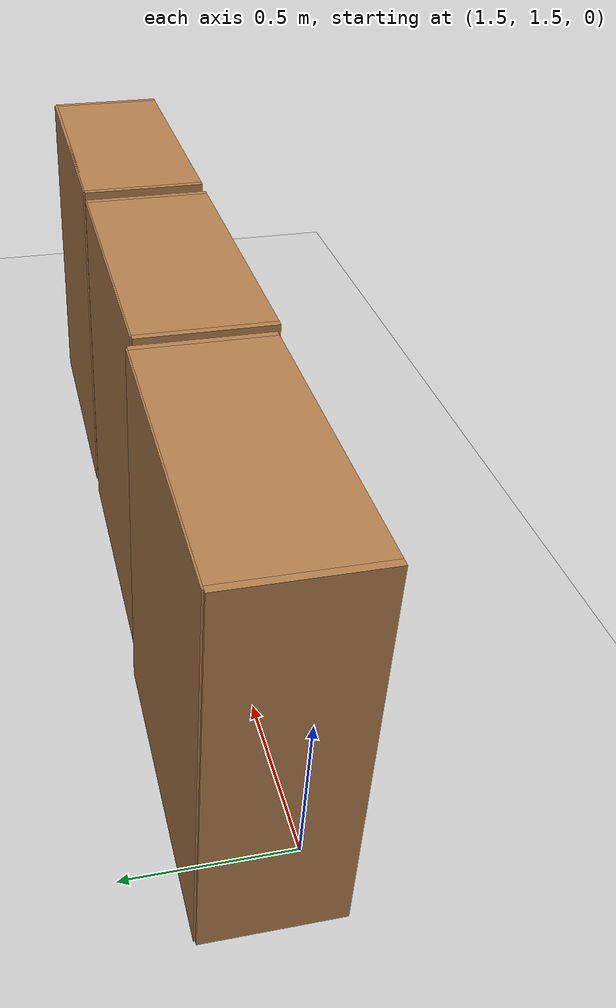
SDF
<sdf version="1.10">
 <world name="empty">
  <physics name="1ms" type="ignored">
   <max_step_size>0.001</max_step_size>
   <real_time_factor>1</real_time_factor>
   <real_time_update_rate>1000</real_time_update_rate>
  </physics>
  <plugin name="gz::sim::systems::Physics" filename="gz-sim-physics-system"/>
  <plugin name="gz::sim::systems::UserCommands" filename="gz-sim-user-commands-system"/>
  <plugin name="gz::sim::systems::SceneBroadcaster" filename="gz-sim-scene-broadcaster-system"/>
  <plugin name="gz::sim::systems::Contact" filename="gz-sim-contact-system"/>
  <gravity>0 0 -9.8000000000000007</gravity>
  <magnetic_field>5.5644999999999998e-06 2.2875799999999999e-05 -4.2388400000000002e-05</magnetic_field>
  <atmosphere type="adiabatic"/>
  <scene>
   <ambient>0.400000006 0.400000006 0.400000006 1</ambient>
   <background>0.699999988 0.699999988 0.699999988 1</background>
   <shadows>true</shadows>
  </scene>
  <model name="ground_plane">
   <static>true</static>
   <link name="link">
    <collision name="collision">
     <geometry><plane><normal>0 0 1</normal><size>100 100</size></plane></geometry>
    </collision>
    <visual name="visual">
     <geometry><plane><normal>0 0 1</normal><size>100 100</size></plane></geometry>
     <material>
      <ambient>0.800000012 0.800000012 0.800000012 1</ambient>
      <diffuse>0.800000012 0.800000012 0.800000012 1</diffuse>
      <specular>0.800000012 0.800000012 0.800000012 1</specular>
     </material>
    </visual>
    <inertial>
     <mass>1</mass>
     <inertia><ixx>1</ixx><ixy>0</ixy><ixz>0</ixz><iyy>1</iyy><iyz>0</iyz><izz>1</izz></inertia>
    </inertial>
   </link>
  </model>
  <model name="Bookshelf">
   <static>true</static>
   <link name="link">
    <inertial>
     <mass>1</mass>
     <inertia><ixx>1</ixx><ixy>0</ixy><ixz>0</ixz><iyy>1</iyy><iyz>0</iyz><izz>1</izz></inertia>
    </inertial>
    <collision name="back">
     <pose>0 0.0050000000000000001 0.59999999999999998 0 0 0</pose>
     <geometry><box><size>0.90000000000000002 0.01 1.2</size></box></geometry>
    </collision>
    <visual name="visual1">
     <pose>0 0.0050000000000000001 0.59999999999999998 0 0 0</pose>
     <geometry><box><size>0.90000000000000002 0.01 1.2</size></box></geometry>
     <material>
      <diffuse>1 1 1 1</diffuse>
      <script><uri>file://media/materials/scripts/gazebo.material</uri><name>Gazebo/Wood</name></script>
      <pbr>
       <metal>
        <albedo_map>https://fuel.gazebosim.org/1.0/openrobotics/models/bookshelf/4/files/bookshelf_diffuse.jpg</albedo_map>
       </metal>
      </pbr>
     </material>
    </visual>
    <collision name="left_side">
     <pose>0.45000000000000001 -0.19500000000000001 0.59999999999999998 0 0 0</pose>
     <geometry><box><size>0.02 0.40000000000000002 1.2</size></box></geometry>
    </collision>
    <visual name="visual2">
     <pose>0.45000000000000001 -0.19500000000000001 0.59999999999999998 0 0 0</pose>
     <geometry><box><size>0.02 0.40000000000000002 1.2</size></box></geometry>
     <material>
      <diffuse>1 1 1 1</diffuse>
      <script><uri>file://media/materials/scripts/gazebo.material</uri><name>Gazebo/Wood</name></script>
      <pbr>
       <metal>
        <albedo_map>https://fuel.gazebosim.org/1.0/openrobotics/models/bookshelf/4/files/bookshelf_diffuse.jpg</albedo_map>
       </metal>
      </pbr>
     </material>
    </visual>
    <collision name="right_side">
     <pose>-0.45000000000000001 -0.19500000000000001 0.59999999999999998 0 0 0</pose>
     <geometry><box><size>0.02 0.40000000000000002 1.2</size></box></geometry>
    </collision>
    <visual name="visual3">
     <pose>-0.45000000000000001 -0.19500000000000001 0.59999999999999998 0 0 0</pose>
     <geometry><box><size>0.02 0.40000000000000002 1.2</size></box></geometry>
     <material>
      <diffuse>1 1 1 1</diffuse>
      <script><uri>file://media/materials/scripts/gazebo.material</uri><name>Gazebo/Wood</name></script>
      <pbr>
       <metal>
        <albedo_map>https://fuel.gazebosim.org/1.0/openrobotics/models/bookshelf/4/files/bookshelf_diffuse.jpg</albedo_map>
       </metal>
      </pbr>
     </material>
    </visual>
    <collision name="bottom">
     <pose>0 -0.19500000000000001 0.029999999999999999 0 0 0</pose>
     <geometry><box><size>0.88 0.40000000000000002 0.059999999999999998</size></box></geometry>
    </collision>
    <visual name="visual4">
     <pose>0 -0.19500000000000001 0.029999999999999999 0 0 0</pose>
     <geometry><box><size>0.88 0.40000000000000002 0.059999999999999998</size></box></geometry>
     <material>
      <diffuse>1 1 1 1</diffuse>
      <script><uri>file://media/materials/scripts/gazebo.material</uri><name>Gazebo/Wood</name></script>
      <pbr>
       <metal>
        <albedo_map>https://fuel.gazebosim.org/1.0/openrobotics/models/bookshelf/4/files/bookshelf_diffuse.jpg</albedo_map>
       </metal>
      </pbr>
     </material>
    </visual>
    <collision name="top">
     <pose>0 -0.19500000000000001 1.1899999999999999 0 0 0</pose>
     <geometry><box><size>0.88 0.40000000000000002 0.02</size></box></geometry>
    </collision>
    <visual name="visual5">
     <pose>0 -0.19500000000000001 1.1899999999999999 0 0 0</pose>
     <geometry><box><size>0.88 0.40000000000000002 0.02</size></box></geometry>
     <material>
      <diffuse>1 1 1 1</diffuse>
      <script><uri>file://media/materials/scripts/gazebo.material</uri><name>Gazebo/Wood</name></script>
      <pbr>
       <metal>
        <albedo_map>https://fuel.gazebosim.org/1.0/openrobotics/models/bookshelf/4/files/bookshelf_diffuse.jpg</albedo_map>
       </metal>
      </pbr>
     </material>
    </visual>
    <collision name="low_shelf">
     <pose>0 -0.19500000000000001 0.42999999999999999 0 0 0</pose>
     <geometry><box><size>0.88 0.40000000000000002 0.02</size></box></geometry>
    </collision>
    <visual name="visual6">
     <pose>0 -0.19500000000000001 0.42999999999999999 0 0 0</pose>
     <geometry><box><size>0.88 0.40000000000000002 0.02</size></box></geometry>
     <material>
      <diffuse>1 1 1 1</diffuse>
      <script><uri>file://media/materials/scripts/gazebo.material</uri><name>Gazebo/Wood</name></script>
      <pbr>
       <metal>
        <albedo_map>https://fuel.gazebosim.org/1.0/openrobotics/models/bookshelf/4/files/bookshelf_diffuse.jpg</albedo_map>
       </metal>
      </pbr>
     </material>
    </visual>
    <collision name="high_shelf">
     <pose>0 -0.19500000000000001 0.80000000000000004 0 0 0</pose>
     <geometry><box><size>0.88 0.40000000000000002 0.02</size></box></geometry>
    </collision>
    <visual name="visual7">
     <pose>0 -0.19500000000000001 0.80000000000000004 0 0 0</pose>
     <geometry><box><size>0.88 0.40000000000000002 0.02</size></box></geometry>
     <material>
      <diffuse>1 1 1 1</diffuse>
      <script><uri>file://media/materials/scripts/gazebo.material</uri><name>Gazebo/Wood</name></script>
      <pbr>
       <metal>
        <albedo_map>https://fuel.gazebosim.org/1.0/openrobotics/models/bookshelf/4/files/bookshelf_diffuse.jpg</albedo_map>
       </metal>
      </pbr>
     </material>
    </visual>
   </link>
   <pose>2.7059342861175537 1.8068100214004517 0 0 0 0</pose>
  </model>
  <model name="Bookshelf_0">
   <static>true</static>
   <link name="link">
    <inertial>
     <mass>1</mass>
     <inertia><ixx>1</ixx><ixy>0</ixy><ixz>0</ixz><iyy>1</iyy><iyz>0</iyz><izz>1</izz></inertia>
    </inertial>
    <collision name="back">
     <pose>0 0.0050000000000000001 0.59999999999999998 0 0 0</pose>
     <geometry><box><size>0.90000000000000002 0.01 1.2</size></box></geometry>
    </collision>
    <visual name="visual1">
     <pose>0 0.0050000000000000001 0.59999999999999998 0 0 0</pose>
     <geometry><box><size>0.90000000000000002 0.01 1.2</size></box></geometry>
     <material>
      <diffuse>1 1 1 1</diffuse>
      <script><uri>file://media/materials/scripts/gazebo.material</uri><name>Gazebo/Wood</name></script>
      <pbr>
       <metal>
        <albedo_map>https://fuel.gazebosim.org/1.0/openrobotics/models/bookshelf/4/files/bookshelf_diffuse.jpg</albedo_map>
       </metal>
      </pbr>
     </material>
    </visual>
    <collision name="left_side">
     <pose>0.45000000000000001 -0.19500000000000001 0.59999999999999998 0 0 0</pose>
     <geometry><box><size>0.02 0.40000000000000002 1.2</size></box></geometry>
    </collision>
    <visual name="visual2">
     <pose>0.45000000000000001 -0.19500000000000001 0.59999999999999998 0 0 0</pose>
     <geometry><box><size>0.02 0.40000000000000002 1.2</size></box></geometry>
     <material>
      <diffuse>1 1 1 1</diffuse>
      <script><uri>file://media/materials/scripts/gazebo.material</uri><name>Gazebo/Wood</name></script>
      <pbr>
       <metal>
        <albedo_map>https://fuel.gazebosim.org/1.0/openrobotics/models/bookshelf/4/files/bookshelf_diffuse.jpg</albedo_map>
       </metal>
      </pbr>
     </material>
    </visual>
    <collision name="right_side">
     <pose>-0.45000000000000001 -0.19500000000000001 0.59999999999999998 0 0 0</pose>
     <geometry><box><size>0.02 0.40000000000000002 1.2</size></box></geometry>
    </collision>
    <visual name="visual3">
     <pose>-0.45000000000000001 -0.19500000000000001 0.59999999999999998 0 0 0</pose>
     <geometry><box><size>0.02 0.40000000000000002 1.2</size></box></geometry>
     <material>
      <diffuse>1 1 1 1</diffuse>
      <script><uri>file://media/materials/scripts/gazebo.material</uri><name>Gazebo/Wood</name></script>
      <pbr>
       <metal>
        <albedo_map>https://fuel.gazebosim.org/1.0/openrobotics/models/bookshelf/4/files/bookshelf_diffuse.jpg</albedo_map>
       </metal>
      </pbr>
     </material>
    </visual>
    <collision name="bottom">
     <pose>0 -0.19500000000000001 0.029999999999999999 0 0 0</pose>
     <geometry><box><size>0.88 0.40000000000000002 0.059999999999999998</size></box></geometry>
    </collision>
    <visual name="visual4">
     <pose>0 -0.19500000000000001 0.029999999999999999 0 0 0</pose>
     <geometry><box><size>0.88 0.40000000000000002 0.059999999999999998</size></box></geometry>
     <material>
      <diffuse>1 1 1 1</diffuse>
      <script><uri>file://media/materials/scripts/gazebo.material</uri><name>Gazebo/Wood</name></script>
      <pbr>
       <metal>
        <albedo_map>https://fuel.gazebosim.org/1.0/openrobotics/models/bookshelf/4/files/bookshelf_diffuse.jpg</albedo_map>
       </metal>
      </pbr>
     </material>
    </visual>
    <collision name="top">
     <pose>0 -0.19500000000000001 1.1899999999999999 0 0 0</pose>
     <geometry><box><size>0.88 0.40000000000000002 0.02</size></box></geometry>
    </collision>
    <visual name="visual5">
     <pose>0 -0.19500000000000001 1.1899999999999999 0 0 0</pose>
     <geometry><box><size>0.88 0.40000000000000002 0.02</size></box></geometry>
     <material>
      <diffuse>1 1 1 1</diffuse>
      <script><uri>file://media/materials/scripts/gazebo.material</uri><name>Gazebo/Wood</name></script>
      <pbr>
       <metal>
        <albedo_map>https://fuel.gazebosim.org/1.0/openrobotics/models/bookshelf/4/files/bookshelf_diffuse.jpg</albedo_map>
       </metal>
      </pbr>
     </material>
    </visual>
    <collision name="low_shelf">
     <pose>0 -0.19500000000000001 0.42999999999999999 0 0 0</pose>
     <geometry><box><size>0.88 0.40000000000000002 0.02</size></box></geometry>
    </collision>
    <visual name="visual6">
     <pose>0 -0.19500000000000001 0.42999999999999999 0 0 0</pose>
     <geometry><box><size>0.88 0.40000000000000002 0.02</size></box></geometry>
     <material>
      <diffuse>1 1 1 1</diffuse>
      <script><uri>file://media/materials/scripts/gazebo.material</uri><name>Gazebo/Wood</name></script>
      <pbr>
       <metal>
        <albedo_map>https://fuel.gazebosim.org/1.0/openrobotics/models/bookshelf/4/files/bookshelf_diffuse.jpg</albedo_map>
       </metal>
      </pbr>
     </material>
    </visual>
    <collision name="high_shelf">
     <pose>0 -0.19500000000000001 0.80000000000000004 0 0 0</pose>
     <geometry><box><size>0.88 0.40000000000000002 0.02</size></box></geometry>
    </collision>
    <visual name="visual7">
     <pose>0 -0.19500000000000001 0.80000000000000004 0 0 0</pose>
     <geometry><box><size>0.88 0.40000000000000002 0.02</size></box></geometry>
     <material>
      <diffuse>1 1 1 1</diffuse>
      <script><uri>file://media/materials/scripts/gazebo.material</uri><name>Gazebo/Wood</name></script>
      <pbr>
       <metal>
        <albedo_map>https://fuel.gazebosim.org/1.0/openrobotics/models/bookshelf/4/files/bookshelf_diffuse.jpg</albedo_map>
       </metal>
      </pbr>
     </material>
    </visual>
   </link>
   <pose>3.6852011680603027 1.8036400079727173 0 0 0 0</pose>
  </model>
  <model name="Bookshelf_1">
   <static>true</static>
   <link name="link">
    <inertial>
     <mass>1</mass>
     <inertia><ixx>1</ixx><ixy>0</ixy><ixz>0</ixz><iyy>1</iyy><iyz>0</iyz><izz>1</izz></inertia>
    </inertial>
    <collision name="back">
     <pose>0 0.0050000000000000001 0.59999999999999998 0 0 0</pose>
     <geometry><box><size>0.90000000000000002 0.01 1.2</size></box></geometry>
    </collision>
    <visual name="visual1">
     <pose>0 0.0050000000000000001 0.59999999999999998 0 0 0</pose>
     <geometry><box><size>0.90000000000000002 0.01 1.2</size></box></geometry>
     <material>
      <diffuse>1 1 1 1</diffuse>
      <script><uri>file://media/materials/scripts/gazebo.material</uri><name>Gazebo/Wood</name></script>
      <pbr>
       <metal>
        <albedo_map>https://fuel.gazebosim.org/1.0/openrobotics/models/bookshelf/4/files/bookshelf_diffuse.jpg</albedo_map>
       </metal>
      </pbr>
     </material>
    </visual>
    <collision name="left_side">
     <pose>0.45000000000000001 -0.19500000000000001 0.59999999999999998 0 0 0</pose>
     <geometry><box><size>0.02 0.40000000000000002 1.2</size></box></geometry>
    </collision>
    <visual name="visual2">
     <pose>0.45000000000000001 -0.19500000000000001 0.59999999999999998 0 0 0</pose>
     <geometry><box><size>0.02 0.40000000000000002 1.2</size></box></geometry>
     <material>
      <diffuse>1 1 1 1</diffuse>
      <script><uri>file://media/materials/scripts/gazebo.material</uri><name>Gazebo/Wood</name></script>
      <pbr>
       <metal>
        <albedo_map>https://fuel.gazebosim.org/1.0/openrobotics/models/bookshelf/4/files/bookshelf_diffuse.jpg</albedo_map>
       </metal>
      </pbr>
     </material>
    </visual>
    <collision name="right_side">
     <pose>-0.45000000000000001 -0.19500000000000001 0.59999999999999998 0 0 0</pose>
     <geometry><box><size>0.02 0.40000000000000002 1.2</size></box></geometry>
    </collision>
    <visual name="visual3">
     <pose>-0.45000000000000001 -0.19500000000000001 0.59999999999999998 0 0 0</pose>
     <geometry><box><size>0.02 0.40000000000000002 1.2</size></box></geometry>
     <material>
      <diffuse>1 1 1 1</diffuse>
      <script><uri>file://media/materials/scripts/gazebo.material</uri><name>Gazebo/Wood</name></script>
      <pbr>
       <metal>
        <albedo_map>https://fuel.gazebosim.org/1.0/openrobotics/models/bookshelf/4/files/bookshelf_diffuse.jpg</albedo_map>
       </metal>
      </pbr>
     </material>
    </visual>
    <collision name="bottom">
     <pose>0 -0.19500000000000001 0.029999999999999999 0 0 0</pose>
     <geometry><box><size>0.88 0.40000000000000002 0.059999999999999998</size></box></geometry>
    </collision>
    <visual name="visual4">
     <pose>0 -0.19500000000000001 0.029999999999999999 0 0 0</pose>
     <geometry><box><size>0.88 0.40000000000000002 0.059999999999999998</size></box></geometry>
     <material>
      <diffuse>1 1 1 1</diffuse>
      <script><uri>file://media/materials/scripts/gazebo.material</uri><name>Gazebo/Wood</name></script>
      <pbr>
       <metal>
        <albedo_map>https://fuel.gazebosim.org/1.0/openrobotics/models/bookshelf/4/files/bookshelf_diffuse.jpg</albedo_map>
       </metal>
      </pbr>
     </material>
    </visual>
    <collision name="top">
     <pose>0 -0.19500000000000001 1.1899999999999999 0 0 0</pose>
     <geometry><box><size>0.88 0.40000000000000002 0.02</size></box></geometry>
    </collision>
    <visual name="visual5">
     <pose>0 -0.19500000000000001 1.1899999999999999 0 0 0</pose>
     <geometry><box><size>0.88 0.40000000000000002 0.02</size></box></geometry>
     <material>
      <diffuse>1 1 1 1</diffuse>
      <script><uri>file://media/materials/scripts/gazebo.material</uri><name>Gazebo/Wood</name></script>
      <pbr>
       <metal>
        <albedo_map>https://fuel.gazebosim.org/1.0/openrobotics/models/bookshelf/4/files/bookshelf_diffuse.jpg</albedo_map>
       </metal>
      </pbr>
     </material>
    </visual>
    <collision name="low_shelf">
     <pose>0 -0.19500000000000001 0.42999999999999999 0 0 0</pose>
     <geometry><box><size>0.88 0.40000000000000002 0.02</size></box></geometry>
    </collision>
    <visual name="visual6">
     <pose>0 -0.19500000000000001 0.42999999999999999 0 0 0</pose>
     <geometry><box><size>0.88 0.40000000000000002 0.02</size></box></geometry>
     <material>
      <diffuse>1 1 1 1</diffuse>
      <script><uri>file://media/materials/scripts/gazebo.material</uri><name>Gazebo/Wood</name></script>
      <pbr>
       <metal>
        <albedo_map>https://fuel.gazebosim.org/1.0/openrobotics/models/bookshelf/4/files/bookshelf_diffuse.jpg</albedo_map>
       </metal>
      </pbr>
     </material>
    </visual>
    <collision name="high_shelf">
     <pose>0 -0.19500000000000001 0.80000000000000004 0 0 0</pose>
     <geometry><box><size>0.88 0.40000000000000002 0.02</size></box></geometry>
    </collision>
    <visual name="visual7">
     <pose>0 -0.19500000000000001 0.80000000000000004 0 0 0</pose>
     <geometry><box><size>0.88 0.40000000000000002 0.02</size></box></geometry>
     <material>
      <diffuse>1 1 1 1</diffuse>
      <script><uri>file://media/materials/scripts/gazebo.material</uri><name>Gazebo/Wood</name></script>
      <pbr>
       <metal>
        <albedo_map>https://fuel.gazebosim.org/1.0/openrobotics/models/bookshelf/4/files/bookshelf_diffuse.jpg</albedo_map>
       </metal>
      </pbr>
     </material>
    </visual>
   </link>
   <pose>1.7530495614387049 1.8265809829896227 0 0 0 0</pose>
  </model>
  <light name="sun" type="directional">
   <pose>0 0 10 0 0 0</pose>
   <intensity>1</intensity>
   <direction>-0.5 0.10000000000000001 -0.90000000000000002</direction>
   <diffuse>0.800000012 0.800000012 0.800000012 1</diffuse>
   <specular>0.200000003 0.200000003 0.200000003 1</specular>
   <attenuation>
    <range>1000</range>
    <linear>0.01</linear>
    <constant>0.90000000000000002</constant>
    <quadratic>0.001</quadratic>
   </attenuation>
   <spot><inner_angle>0</inner_angle><outer_angle>0</outer_angle><falloff>0</falloff></spot>
  </light>
 </world>
</sdf>
